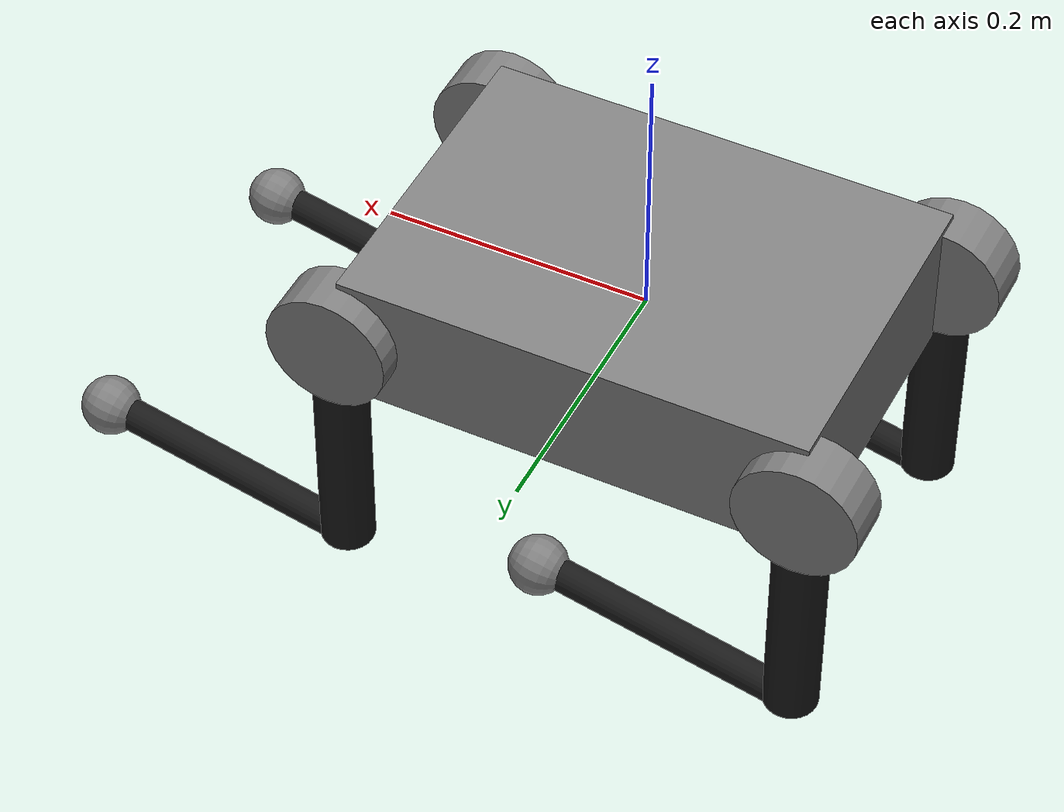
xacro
<?xml version='1.0' encoding='utf-8'?>
<robot name="go2_description" xmlns:xacro="http://www.ros.org/wiki/xacro">

  <xacro:property name="PI" value="3.141592653589793" />
  <xacro:property name="HALF_PI" value="1.5707963267948966" />

  <xacro:arg name="base_len" default="0.35" />
  <xacro:arg name="base_width" default="0.25" />
  <xacro:arg name="leg_len" default="0.2" />

  <xacro:arg name="thigh_len" default="$(arg leg_len)" />
  <xacro:arg name="calf_len" default="$(arg leg_len)" />

  <xacro:arg name="base_height" default="0.1" />

  <xacro:property name="hip_x_offset" value="${$(arg base_len) / 2.0}" />
  <xacro:property name="hip_y_offset" value="${$(arg base_width) / 2.0}" />
  <xacro:property name="hip_link_y_origin" value="0.00" />
  <xacro:property name="hip_link_cyl_len" value="0.04" />
  <xacro:property name="hip_link_cyl_radius" value="0.046" />

  <xacro:property name="thigh_joint_y_offset" value="0.0" />
  <xacro:property name="thigh_cyl_radius" value="0.02" />
  <xacro:property name="calf_cyl_radius" value="0.012" />
  <xacro:property name="foot_sphere_radius" value="0.022" />
  <xacro:property name="foot_x_offset" value="-0.002" />
  <xacro:property name="imu_x" value="0" />
  <xacro:property name="imu_y" value="0" />
  <xacro:property name="imu_z" value="0" />
  <xacro:property name="hip_limit_lower" value="-1." />
  <xacro:property name="hip_limit_upper" value="1." />
  <xacro:property name="hip_limit_effort" value="20" />
  <xacro:property name="hip_limit_vel" value="30" />
  <xacro:property name="front_thigh_limit_lower" value="-1.5708" />
  <xacro:property name="front_thigh_limit_upper" value="3.4907" />
  <xacro:property name="rear_thigh_limit_lower" value="-0.5236" />
  <xacro:property name="rear_thigh_limit_upper" value="4.5379" />
  <xacro:property name="thigh_limit_effort" value="20" />
  <xacro:property name="thigh_limit_vel" value="30" />
  <xacro:property name="calf_limit_lower" value="-2.7227" />
  <xacro:property name="calf_limit_upper" value="-0.83776" />
  <xacro:property name="calf_limit_effort" value="45" />
  <xacro:property name="calf_limit_vel" value="15" />

  <material name="grey">
    <color rgba="0.5 0.5 0.5 1.0"/>
  </material>
  <material name="black">
    <color rgba="0.1 0.1 0.1 1.0"/>
  </material>

  <link name="base">
    <xacro:property name="base_geometry">
      <origin rpy="0 0 0" xyz="0 0 0" />
      <geometry>
        <box size="$(arg base_len) $(arg base_width) $(arg base_height)" />
      </geometry>
    </xacro:property>

    <collision>
      <xacro:insert_block name="base_geometry" />
    </collision>

    <visual>
      <xacro:insert_block name="base_geometry" />
      <material name="grey"/>
    </visual>
  </link>

  <xacro:macro name="leg" params="prefix reflect_x reflect_y thigh_lower thigh_upper">

    <link name="${prefix}_hip">
      <xacro:property name="hip_geometry">
        <origin rpy="${HALF_PI} 0 0" xyz="0 ${reflect_y * hip_link_y_origin} 0" />
        <geometry>
          <cylinder length="${hip_link_cyl_len}" radius="${hip_link_cyl_radius}" />
        </geometry>
      </xacro:property>

      <collision>
        <xacro:insert_block name="hip_geometry" />
      </collision>
      <visual>
        <xacro:insert_block name="hip_geometry" />
        <material name="grey"/>
      </visual>
    </link>

    <joint name="${prefix}_hip_joint" type="revolute">
      <origin xyz="${reflect_x * hip_x_offset} ${reflect_y * hip_y_offset} 0" rpy="0 0 0" />
      <parent link="base" />
      <child link="${prefix}_hip" />
      <axis xyz="1 0 0" />
      <limit lower="${hip_limit_lower}" upper="${hip_limit_upper}" effort="${hip_limit_effort}" velocity="${hip_limit_vel}" />
    </joint>

    <link name="${prefix}_thigh">
      <xacro:property name="thigh_geometry">
        <origin rpy="0 0 0" xyz="0 0 -${$(arg thigh_len) / 2}" />
        <geometry>
          <cylinder length="$(arg thigh_len)" radius="${thigh_cyl_radius}" />
        </geometry>
      </xacro:property>

      <collision>
        <xacro:insert_block name="thigh_geometry" />
      </collision>
      <visual>
        <xacro:insert_block name="thigh_geometry" />
        <material name="black"/>
      </visual>
    </link>

    <joint name="${prefix}_thigh_joint" type="revolute">
      <origin xyz="0 ${reflect_y * thigh_joint_y_offset} 0" rpy="0 0 0" />
      <parent link="${prefix}_hip" />
      <child link="${prefix}_thigh" />
      <axis xyz="0 1 0" />
      <limit lower="${thigh_lower}" upper="${thigh_upper}" effort="${thigh_limit_effort}" velocity="${thigh_limit_vel}" />
    </joint>

    <joint name="${prefix}_calf_joint" type="revolute">
      <origin xyz="0 0 -$(arg thigh_len)" rpy="0 0 0" />
      <parent link="${prefix}_thigh" />
      <child link="${prefix}_calf" />
      <axis xyz="0 1 0" />
      <limit lower="${calf_limit_lower}" upper="${calf_limit_upper}" effort="${calf_limit_effort}" velocity="${calf_limit_vel}" />
    </joint>

    <link name="${prefix}_calf">
      <xacro:property name="calf_geometry">
        <origin xyz="0 0 -${$(arg calf_len) / 2}" rpy="0 0 0" />
        <geometry>
          <cylinder length="$(arg calf_len)" radius="${calf_cyl_radius}" />
        </geometry>
      </xacro:property>

      <collision>
        <xacro:insert_block name="calf_geometry" />
      </collision>
      <visual>
        <xacro:insert_block name="calf_geometry" />
        <material name="black"/>
      </visual>
    </link>

    <link name="${prefix}_foot">
      <xacro:property name="foot_geometry">
        <origin rpy="0 0 0" xyz="${foot_x_offset} 0 0" />
        <geometry>
          <sphere radius="${foot_sphere_radius}" />
        </geometry>
      </xacro:property>

      <collision>
        <xacro:insert_block name="foot_geometry" />
      </collision>
      <visual>
        <xacro:insert_block name="foot_geometry" />
        <material name="grey"/>
      </visual>
    </link>

    <joint name="${prefix}_foot_joint" type="fixed" dont_collapse="true">
      <origin xyz="0 0 -$(arg calf_len)" rpy="0 0 0" />
      <parent link="${prefix}_calf" />
      <child link="${prefix}_foot" />
      <axis xyz="0 0 0" />
    </joint>

  </xacro:macro>

  <xacro:leg prefix="FL" reflect_x="1" reflect_y="1"
             thigh_lower="${front_thigh_limit_lower}"
             thigh_upper="${front_thigh_limit_upper}" />

  <xacro:leg prefix="FR" reflect_x="1" reflect_y="-1"
             thigh_lower="${front_thigh_limit_lower}"
             thigh_upper="${front_thigh_limit_upper}" />

  <xacro:leg prefix="RL" reflect_x="-1" reflect_y="1"
             thigh_lower="${rear_thigh_limit_lower}"
             thigh_upper="${rear_thigh_limit_upper}" />

  <xacro:leg prefix="RR" reflect_x="-1" reflect_y="-1"
             thigh_lower="${rear_thigh_limit_lower}"
             thigh_upper="${rear_thigh_limit_upper}" />

  <link name="imu">
  </link>
  <joint name="imu_joint" type="fixed">
    <origin xyz="${imu_x} ${imu_y} ${imu_z}" rpy="0 0 0" />
    <parent link="base" />
    <child link="imu" />
    <axis xyz="0 0 0" />
  </joint>

</robot>
